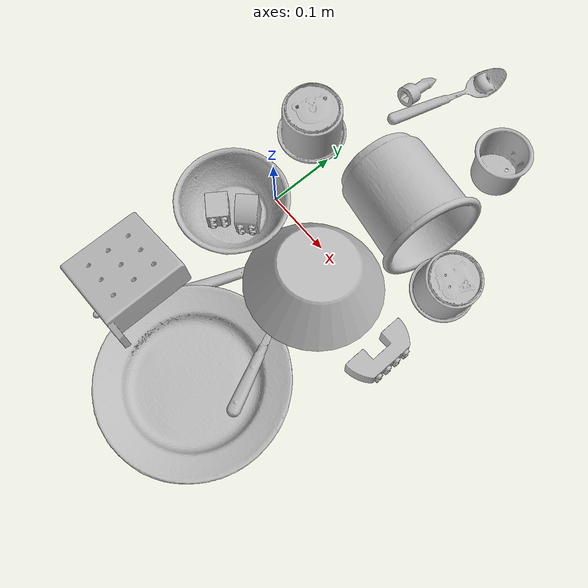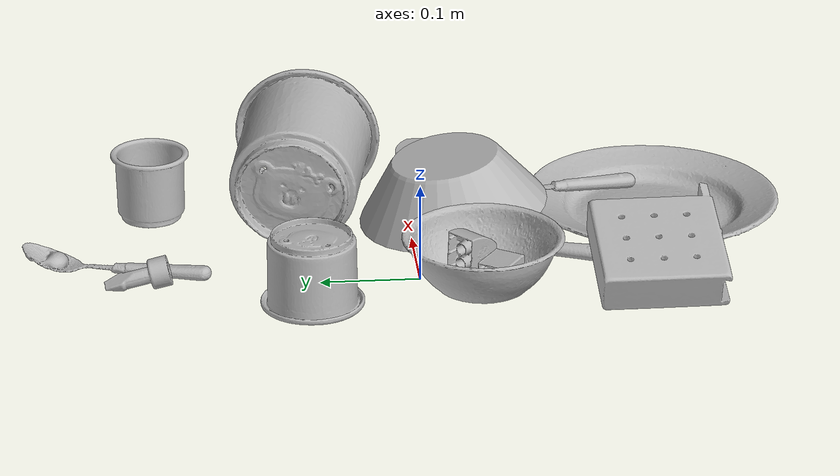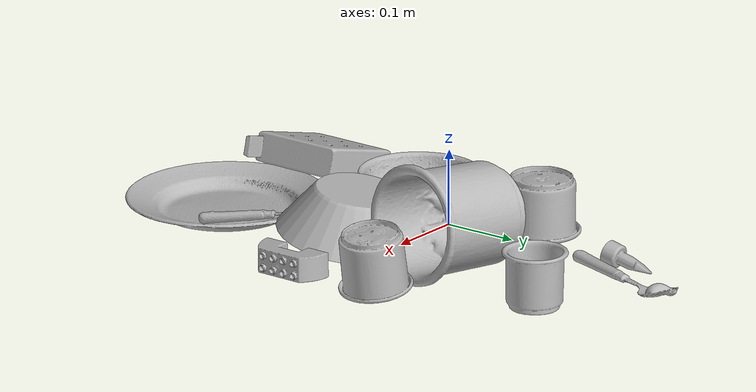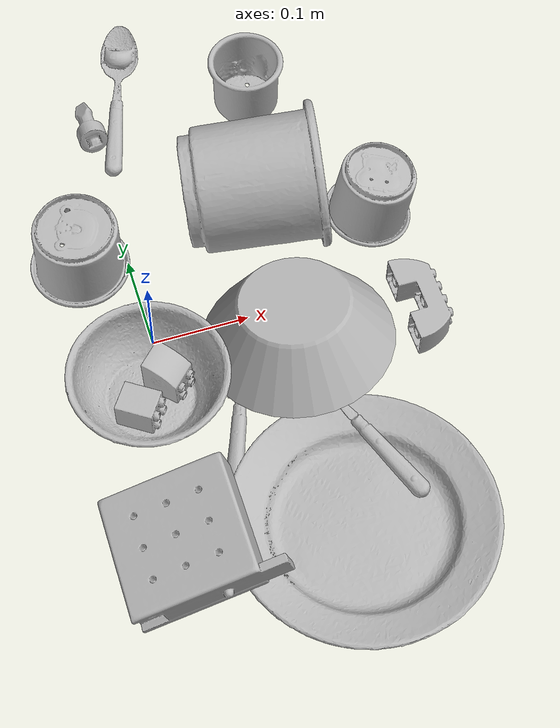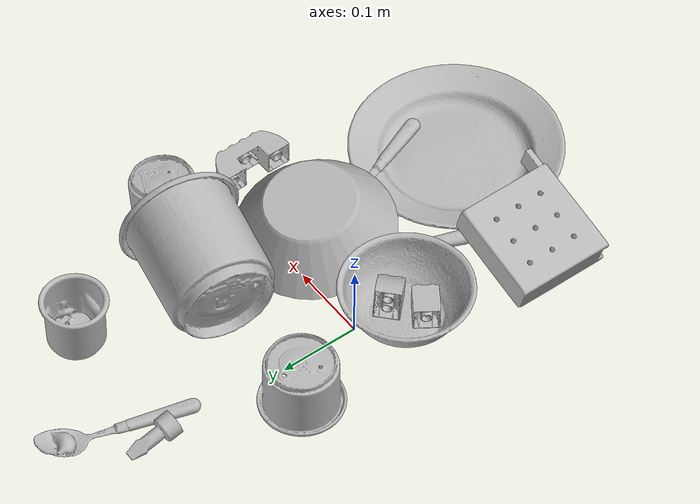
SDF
<sdf version="1.4">
  <world name="default">
    <light name="light1" type="point">
      <pose>0 0 1 0 0 0</pose>
      <diffuse>3 3 3 1</diffuse>
      <specular>3 3 3 1</specular>
    </light>
    <light name="light2" type="point">
      <pose>0 0.5 2 0 0 0</pose>
      <diffuse>1 1 1 1</diffuse>
      <specular>1 1 1 1</specular>
    </light>
    <light name="light3" type="point">
      <pose>0 0.5 2 0 0 0</pose>
      <diffuse>3 3 3 1</diffuse>
      <specular>3 3 3 1</specular>
    </light>
    <scene>
      <ambient>0.7 0.7 0.7</ambient>
    </scene>
    <model name="plate1">
      <link name="link_plate1">
        <collision name="default">
          <geometry>
            <mesh>
              <uri>model://plate/collision_meshes/collision.obj</uri>
              <scale>1.0 1.0 1.0</scale>
            </mesh>
          </geometry>
          <surface>
            <friction>
              <ode>
                <mu>0.5</mu>
                <mu2>0.5</mu2>
              </ode>
            </friction>
          <contact>
        <ode>
            <max_vel>0</max_vel>
            <min_depth>0.0001</min_depth>
            <kp>1e8</kp>
        </ode>
    </contact></surface>
        </collision>
        <visual name="default">
          <geometry>
            <mesh>
              <uri>model://plate/visual_meshes/visual.dae</uri>
              <scale>1.0 1.0 1.0</scale>
            </mesh>
          </geometry>
        </visual>
        <inertial>
          <mass>0.17760059237480164</mass>
          <pose>-0.0006044625188224018 0.0002782586379908025 -0.0010561981471255422 0.0022187804018266454 -0.0032254852757079067 0.45261158451631034</pose>
          <inertia>
            <ixx>0.0008308187</ixx>
            <iyy>0.0008228725</iyy>
            <izz>0.0016249575</izz>
            <ixy>0</ixy>
            <ixz>0</ixz>
            <iyz>0</iyz>
          </inertia>
        </inertial>
      </link>
      <pose>0.13678096234798431 -0.2544024884700775 0.01374615915119648 -0.00015634206144045845 5.452477375862348e-05 1.254448139702735</pose>
    </model>
    <model name="cup1">
      <link name="link_cup1">
        <collision name="default">
          <geometry>
            <mesh>
              <uri>model://e_cups/collision_meshes/collision.obj</uri>
              <scale>2.0 2.0 2.0</scale>
            </mesh>
          </geometry>
          <surface>
            <friction>
              <ode>
                <mu>0.5</mu>
                <mu2>0.5</mu2>
              </ode>
            </friction>
          <contact>
        <ode>
            <max_vel>0</max_vel>
            <min_depth>0.0001</min_depth>
            <kp>1e8</kp>
        </ode>
    </contact></surface>
        </collision>
        <visual name="default">
          <geometry>
            <mesh>
              <uri>model://e_cups/visual_meshes/visual.dae</uri>
              <scale>2.0 2.0 2.0</scale>
            </mesh>
          </geometry>
        </visual>
        <inertial>
          <mass>0.744063675403595</mass>
          <pose>0.002271148143336177 0.005759569350630045 -0.007765938527882099 0.6952380949131286 0.08767384491187986 -0.5235246841726229</pose>
          <inertia>
            <ixx>0.0026243117</ixx>
            <iyy>0.0027427815</iyy>
            <izz>0.0025091455</izz>
            <ixy>0</ixy>
            <ixz>0</ixz>
            <iyz>0</iyz>
          </inertia>
        </inertial>
      </link>
      <pose>0.1402139514684677 0.11187028884887695 0.07003569602966309 -1.4673848425848666 0.6125235633242091 -1.692423374147673</pose>
    </model>
    <model name="silverware1">
      <link name="link_silverware1">
        <collision name="default">
          <geometry>
            <mesh>
              <uri>model://knife/collision_meshes/collision.obj</uri>
              <scale>1.0 1.0 1.0</scale>
            </mesh>
          </geometry>
          <surface>
            <friction>
              <ode>
                <mu>0.5</mu>
                <mu2>0.5</mu2>
              </ode>
            </friction>
          <contact>
        <ode>
            <max_vel>0</max_vel>
            <min_depth>0.0001</min_depth>
            <kp>1e8</kp>
        </ode>
    </contact></surface>
        </collision>
        <visual name="default">
          <geometry>
            <mesh>
              <uri>model://knife/visual_meshes/visual.dae</uri>
              <scale>1.0 1.0 1.0</scale>
            </mesh>
          </geometry>
        </visual>
        <inertial>
          <mass>0.01882243901491165</mass>
          <pose>-0.02378525212407112 0.001527512213215232 5.062019408796914e-05 0.07305335090357784 0.017248422780830937 -0.007409828138098005</pose>
          <inertia>
            <ixx>5.342572e-07</ixx>
            <iyy>7.231275e-05</iyy>
            <izz>7.248483e-05</izz>
            <ixy>0</ixy>
            <ixz>0</ixz>
            <iyz>0</iyz>
          </inertia>
        </inertial>
      </link>
      <pose>0.06156899780035019 -0.09017381072044373 0.0058107622899115086 2.889374483224069 0.025914968074130164 1.2224258521996243</pose>
    </model>
    <model name="silverware2">
      <link name="link_silverware2">
        <collision name="default">
          <geometry>
            <mesh>
              <uri>model://fork/collision_meshes/collision.obj</uri>
              <scale>1.0 1.0 1.0</scale>
            </mesh>
          </geometry>
          <surface>
            <friction>
              <ode>
                <mu>0.5</mu>
                <mu2>0.5</mu2>
              </ode>
            </friction>
          <contact>
        <ode>
            <max_vel>0</max_vel>
            <min_depth>0.0001</min_depth>
            <kp>1e8</kp>
        </ode>
    </contact></surface>
        </collision>
        <visual name="default">
          <geometry>
            <mesh>
              <uri>model://fork/visual_meshes/visual.dae</uri>
              <scale>1.0 1.0 1.0</scale>
            </mesh>
          </geometry>
        </visual>
        <inertial>
          <mass>0.02216319739818573</mass>
          <pose>-0.029570037499070168 0.0004658822435885668 0.0003218860365450382 -0.01355085274048469 -0.010977831838055618 0.014453900749429992</pose>
          <inertia>
            <ixx>7.769453e-07</ixx>
            <iyy>5.7861733e-05</iyy>
            <izz>5.8209254e-05</izz>
            <ixy>0</ixy>
            <ixz>0</ixz>
            <iyz>0</iyz>
          </inertia>
        </inertial>
      </link>
      <pose>0.1629321128129959 -0.15634004771709442 0.02416052669286728 0.02016942131592304 -0.12094325107903996 1.9993228015825142</pose>
    </model>
    <model name="silverware3">
      <link name="link_silverware3">
        <collision name="default">
          <geometry>
            <mesh>
              <uri>model://spoon/collision_meshes/collision.obj</uri>
              <scale>1.0 1.0 1.0</scale>
            </mesh>
          </geometry>
          <surface>
            <friction>
              <ode>
                <mu>0.5</mu>
                <mu2>0.5</mu2>
              </ode>
            </friction>
          <contact>
        <ode>
            <max_vel>0</max_vel>
            <min_depth>0.0001</min_depth>
            <kp>1e8</kp>
        </ode>
    </contact></surface>
        </collision>
        <visual name="default">
          <geometry>
            <mesh>
              <uri>model://spoon/visual_meshes/visual.dae</uri>
              <scale>1.0 1.0 1.0</scale>
            </mesh>
          </geometry>
        </visual>
        <inertial>
          <mass>0.0369713120162487</mass>
          <pose>-0.005526314955204725 -0.001603417214937508 -0.0007271651993505657 0.03521850370393077 -0.03906584809093457 0.006150612862082015</pose>
          <inertia>
            <ixx>2.0564048e-06</ixx>
            <iyy>0.00014067463</iyy>
            <izz>0.00014168874</izz>
            <ixy>0</ixy>
            <ixz>0</ixz>
            <iyz>0</iyz>
          </inertia>
        </inertial>
      </link>
      <pose>0.03993913531303406 0.302913635969162 0.008385262452065945 0.006723216244677226 0.026893053513984744 1.2722620378268144</pose>
    </model>
    <model name="cup3">
      <link name="link_cup3">
        <collision name="default">
          <geometry>
            <mesh>
              <uri>model://h_cups/collision_meshes/collision.obj</uri>
              <scale>1.0 1.0 1.0</scale>
            </mesh>
          </geometry>
          <surface>
            <friction>
              <ode>
                <mu>0.5</mu>
                <mu2>0.5</mu2>
              </ode>
            </friction>
          <contact>
        <ode>
            <max_vel>0</max_vel>
            <min_depth>0.0001</min_depth>
            <kp>1e8</kp>
        </ode>
    </contact></surface>
        </collision>
        <visual name="default">
          <geometry>
            <mesh>
              <uri>model://h_cups/visual_meshes/visual.dae</uri>
              <scale>1.0 1.0 1.0</scale>
            </mesh>
          </geometry>
        </visual>
        <inertial>
          <mass>0.07650958746671677</mass>
          <pose>-2.7029362172470428e-05 0.0002301867789356038 -0.0018405390437692404 -0.02436239906192228 0.06545228304852578 0.1288505673262376</pose>
          <inertia>
            <ixx>9.880857e-05</ixx>
            <iyy>9.7629454e-05</iyy>
            <izz>0.0001036231</izz>
            <ixy>0</ixy>
            <ixz>0</ixz>
            <iyz>0</iyz>
          </inertia>
        </inertial>
      </link>
      <pose>0.2614831328392029 0.08244765549898148 0.04369213804602623 -2.9978682208499268 0.04312719480641489 1.26283936738958</pose>
    </model>
    <model name="cup4">
      <link name="link_cup4">
        <collision name="default">
          <geometry>
            <mesh>
              <uri>model://f_cups/collision_meshes/collision.obj</uri>
              <scale>1.0 1.0 1.0</scale>
            </mesh>
          </geometry>
          <surface>
            <friction>
              <ode>
                <mu>0.5</mu>
                <mu2>0.5</mu2>
              </ode>
            </friction>
          <contact>
        <ode>
            <max_vel>0</max_vel>
            <min_depth>0.0001</min_depth>
            <kp>1e8</kp>
        </ode>
    </contact></surface>
        </collision>
        <visual name="default">
          <geometry>
            <mesh>
              <uri>model://f_cups/visual_meshes/visual.dae</uri>
              <scale>1.0 1.0 1.0</scale>
            </mesh>
          </geometry>
        </visual>
        <inertial>
          <mass>0.06643713265657425</mass>
          <pose>-0.003171468386426568 -0.0006240070797502995 -0.003655537962913513 0.7862285241405351 -0.26079358215919657 -0.18237309734404591</pose>
          <inertia>
            <ixx>6.2452695e-05</ixx>
            <iyy>6.551358e-05</iyy>
            <izz>6.820148e-05</izz>
            <ixy>0</ixy>
            <ixz>0</ixz>
            <iyz>0</iyz>
          </inertia>
        </inertial>
      </link>
      <pose>0.17848023772239685 0.2648155093193054 0.036305997520685196 -1.0470674771667681e-08 9.722222618896383e-08 1.5180347674137193</pose>
    </model>
    <model name="cup5">
      <link name="link_cup5">
        <collision name="default">
          <geometry>
            <mesh>
              <uri>model://j_cups/collision_meshes/collision.obj</uri>
              <scale>1.0 1.0 1.0</scale>
            </mesh>
          </geometry>
          <surface>
            <friction>
              <ode>
                <mu>0.5</mu>
                <mu2>0.5</mu2>
              </ode>
            </friction>
          <contact>
        <ode>
            <max_vel>0</max_vel>
            <min_depth>0.0001</min_depth>
            <kp>1e8</kp>
        </ode>
    </contact></surface>
        </collision>
        <visual name="default">
          <geometry>
            <mesh>
              <uri>model://j_cups/visual_meshes/visual.dae</uri>
              <scale>1.0 1.0 1.0</scale>
            </mesh>
          </geometry>
        </visual>
        <inertial>
          <mass>0.12178023159503937</mass>
          <pose>0.0006164865335449576 0.000539897009730339 -0.001347901183180511 0.03030406613159603 0.03757978252187804 0.4386981755119238</pose>
          <inertia>
            <ixx>0.0001788119</ixx>
            <iyy>0.00018067128</iyy>
            <izz>0.00020613305</izz>
            <ixy>0</ixy>
            <ixz>0</ixz>
            <iyz>0</iyz>
          </inertia>
        </inertial>
      </link>
      <pose>-0.04778300225734711 0.11038053780794144 0.037997763603925705 -3.1398482889550237 0.006368988619618211 1.0132106262823113</pose>
    </model>
    <model name="bowl1">
      <link name="link_bowl1">
        <collision name="default">
          <geometry>
            <mesh>
              <uri>model://bowl/collision_meshes/collision.obj</uri>
              <scale>1.0 1.0 1.0</scale>
            </mesh>
          </geometry>
          <surface>
            <friction>
              <ode>
                <mu>0.5</mu>
                <mu2>0.5</mu2>
              </ode>
            </friction>
          <contact>
        <ode>
            <max_vel>0</max_vel>
            <min_depth>0.0001</min_depth>
            <kp>1e8</kp>
        </ode>
    </contact></surface>
        </collision>
        <visual name="default">
          <geometry>
            <mesh>
              <uri>model://bowl/visual_meshes/visual.dae</uri>
              <scale>1.0 1.0 1.0</scale>
            </mesh>
          </geometry>
        </visual>
        <inertial>
          <mass>0.07745425403118134</mass>
          <pose>0.0002044533030129969 -0.001030205748975277 -0.0008042643312364817 -0.015764104528614948 0.014546761750555465 0.7140386532433999</pose>
          <inertia>
            <ixx>0.00017791858</ixx>
            <iyy>0.0001739432</iyy>
            <izz>0.00029932024</izz>
            <ixy>0</ixy>
            <ixz>0</ixz>
            <iyz>0</iyz>
          </inertia>
        </inertial>
      </link>
      <pose>-0.01896941475570202 -0.06051785126328468 0.027780519798398018 2.843680534006338e-06 -1.8431513014660253e-05 0.08065108489629134</pose>
    </model>
    <model name="bowl2">
      <link name="link_bowl2">
        <collision name="default">
          <geometry>
            <mesh>
              <uri>model://bowl_a/collision_meshes/collision.obj</uri>
              <scale>1.0 1.0 1.0</scale>
            </mesh>
          </geometry>
          <surface>
            <friction>
              <ode>
                <mu>0.5</mu>
                <mu2>0.5</mu2>
              </ode>
            </friction>
          <contact>
        <ode>
            <max_vel>0</max_vel>
            <min_depth>0.0001</min_depth>
            <kp>1e8</kp>
        </ode>
    </contact></surface>
        </collision>
        <visual name="default">
          <geometry>
            <mesh>
              <uri>model://bowl_a/visual_meshes/visual.dae</uri>
              <scale>1.0 1.0 1.0</scale>
            </mesh>
          </geometry>
        </visual>
        <inertial>
          <mass>0.3088552951812744</mass>
          <pose>0.00027867488097399473 4.730938235297799e-05 -0.0013765291078016162 -0.0009805400563029818 -0.0010938222386440513 -0.19123616665791646</pose>
          <inertia>
            <ixx>0.0008793254</ixx>
            <iyy>0.00088472397</iyy>
            <izz>0.0015639137</izz>
            <ixy>0</ixy>
            <ixz>0</ixz>
            <iyz>0</iyz>
          </inertia>
        </inertial>
      </link>
      <pose>0.13707005977630615 -0.04191497340798378 0.04494893178343773 3.1183254312635844 0.15634866239276196 1.6382427519735885</pose>
    </model>
    <model name="toy1">
      <link name="link_toy1">
        <collision name="default">
          <geometry>
            <mesh>
              <uri>model://nine_hole_peg_test/collision_meshes/collision.obj</uri>
              <scale>1.0 1.0 1.0</scale>
            </mesh>
          </geometry>
          <surface>
            <friction>
              <ode>
                <mu>0.5</mu>
                <mu2>0.5</mu2>
              </ode>
            </friction>
          <contact>
        <ode>
            <max_vel>0</max_vel>
            <min_depth>0.0001</min_depth>
            <kp>1e8</kp>
        </ode>
    </contact></surface>
        </collision>
        <visual name="default">
          <geometry>
            <mesh>
              <uri>model://nine_hole_peg_test/visual_meshes/visual.dae</uri>
              <scale>1.0 1.0 1.0</scale>
            </mesh>
          </geometry>
        </visual>
        <inertial>
          <mass>0.6997236609458923</mass>
          <pose>-0.004617386497557163 -0.009647613391280174 2.6460686058271676e-05 -0.0014666798725883532 0.0007194177661592421 -0.634241755630697</pose>
          <inertia>
            <ixx>0.001094133</ixx>
            <iyy>0.0010215805</iyy>
            <izz>0.0019172435</izz>
            <ixy>0</ixy>
            <ixz>0</ixz>
            <iyz>0</iyz>
          </inertia>
        </inertial>
      </link>
      <pose>-0.024152971804142 -0.2381577044725418 0.039033275097608566 0.27499165297382244 -0.00325795174921308 -1.5634991357756558</pose>
    </model>
    <model name="toy2">
      <link name="link_toy2">
        <collision name="default">
          <geometry>
            <mesh>
              <uri>model://b_lego_duplo/collision_meshes/collision.obj</uri>
              <scale>1.0 1.0 1.0</scale>
            </mesh>
          </geometry>
          <surface>
            <friction>
              <ode>
                <mu>0.5</mu>
                <mu2>0.5</mu2>
              </ode>
            </friction>
          <contact>
        <ode>
            <max_vel>0</max_vel>
            <min_depth>0.0001</min_depth>
            <kp>1e8</kp>
        </ode>
    </contact></surface>
        </collision>
        <visual name="default">
          <geometry>
            <mesh>
              <uri>model://b_lego_duplo/visual_meshes/visual.dae</uri>
              <scale>1.0 1.0 1.0</scale>
            </mesh>
          </geometry>
        </visual>
        <inertial>
          <mass>0.036269694566726685</mass>
          <pose>-0.00011053054186049849 -9.152130587608553e-06 0.0019294297089800239 -0.03749458994465856 -0.026354447033388347 0.4518895757464325</pose>
          <inertia>
            <ixx>7.4228647e-06</ixx>
            <iyy>7.4727645e-06</iyy>
            <izz>6.6135317e-06</izz>
            <ixy>0</ixy>
            <ixz>0</ixz>
            <iyz>0</iyz>
          </inertia>
        </inertial>
      </link>
      <pose>-0.032543376088142395 -0.07835698127746582 0.01953214220702648 0.28000250828754225 -1.5572778310970279 2.2638889745702944</pose>
    </model>
    <model name="toy3">
      <link name="link_toy3">
        <collision name="default">
          <geometry>
            <mesh>
              <uri>model://e_lego_duplo/collision_meshes/collision.obj</uri>
              <scale>1.0 1.0 1.0</scale>
            </mesh>
          </geometry>
          <surface>
            <friction>
              <ode>
                <mu>0.5</mu>
                <mu2>0.5</mu2>
              </ode>
            </friction>
          <contact>
        <ode>
            <max_vel>0</max_vel>
            <min_depth>0.0001</min_depth>
            <kp>1e8</kp>
        </ode>
    </contact></surface>
        </collision>
        <visual name="default">
          <geometry>
            <mesh>
              <uri>model://e_lego_duplo/visual_meshes/visual.dae</uri>
              <scale>1.0 1.0 1.0</scale>
            </mesh>
          </geometry>
        </visual>
        <inertial>
          <mass>0.09994293004274368</mass>
          <pose>0.0003256055060774088 0.00023485402925871313 0.0019521453650668263 -0.0225675226805428 -6.825163911406593e-05 -0.00762515763197677</pose>
          <inertia>
            <ixx>2.08414e-05</ixx>
            <iyy>8.553845e-05</iyy>
            <izz>8.329725e-05</izz>
            <ixy>0</ixy>
            <ixz>0</ixz>
            <iyz>0</iyz>
          </inertia>
        </inertial>
      </link>
      <pose>0.2720017433166504 -0.04354089871048927 0.01627941243350506 1.578639459774125 -0.004768752669797674 1.5892606635827426</pose>
    </model>
    <model name="toy4">
      <link name="link_toy4">
        <collision name="default">
          <geometry>
            <mesh>
              <uri>model://d_lego_duplo/collision_meshes/collision.obj</uri>
              <scale>1.0 1.0 1.0</scale>
            </mesh>
          </geometry>
          <surface>
            <friction>
              <ode>
                <mu>0.5</mu>
                <mu2>0.5</mu2>
              </ode>
            </friction>
          <contact>
        <ode>
            <max_vel>0</max_vel>
            <min_depth>0.0001</min_depth>
            <kp>1e8</kp>
        </ode>
    </contact></surface>
        </collision>
        <visual name="default">
          <geometry>
            <mesh>
              <uri>model://d_lego_duplo/visual_meshes/visual.dae</uri>
              <scale>1.0 1.0 1.0</scale>
            </mesh>
          </geometry>
        </visual>
        <inertial>
          <mass>0.04219998046755791</mass>
          <pose>0.0028305635787546635 0.00016366135969292372 0.0008589813369326293 0.08010947906167593 -0.38355230128712514 0.001029700717632254</pose>
          <inertia>
            <ixx>8.169298e-06</ixx>
            <iyy>1.1594444e-05</iyy>
            <izz>1.1181217e-05</izz>
            <ixy>0</ixy>
            <ixz>0</ixz>
            <iyz>0</iyz>
          </inertia>
        </inertial>
      </link>
      <pose>0.0030284258536994457 -0.05325814709067345 0.027474919334053993 1.711776423321531 1.5251785432580687 0.9160692922703743</pose>
    </model>
    <model name="toy5">
      <link name="link_toy5">
        <collision name="default">
          <geometry>
            <mesh>
              <uri>model://e_toy_airplane/collision_meshes/collision.obj</uri>
              <scale>1.0 1.0 1.0</scale>
            </mesh>
          </geometry>
          <surface>
            <friction>
              <ode>
                <mu>0.5</mu>
                <mu2>0.5</mu2>
              </ode>
            </friction>
          <contact>
        <ode>
            <max_vel>0</max_vel>
            <min_depth>0.0001</min_depth>
            <kp>1e8</kp>
        </ode>
    </contact></surface>
        </collision>
        <visual name="default">
          <geometry>
            <mesh>
              <uri>model://e_toy_airplane/visual_meshes/visual.dae</uri>
              <scale>1.0 1.0 1.0</scale>
            </mesh>
          </geometry>
        </visual>
        <inertial>
          <mass>0.01083444245159626</mass>
          <pose>0.00011740464105969295 -2.2482989152194932e-05 -0.011187201365828514 0.005518500665833105 0.009228299677984822 0.1504140594290799</pose>
          <inertia>
            <ixx>3.3067965e-06</ixx>
            <iyy>3.2729695e-06</iyy>
            <izz>9.938221e-07</izz>
            <ixy>0</ixy>
            <ixz>0</ixz>
            <iyz>0</iyz>
          </inertia>
        </inertial>
      </link>
      <pose>0.0032643598970025778 0.28117457032203674 0.011229579336941242 1.9991335070069143 -0.9735498524720958 2.7896337951893724</pose>
    </model>
  <physics type="ode">
      <max_contacts>50</max_contacts>
      <ode>
        <solver>
          <type>quick</type>
          <iters>75</iters>
        </solver>
        <constraints>
          <contact_max_correcting_vel>0</contact_max_correcting_vel>
          <contact_surface_layer>0</contact_surface_layer>
        </constraints>
      </ode>
    </physics></world>
</sdf>
